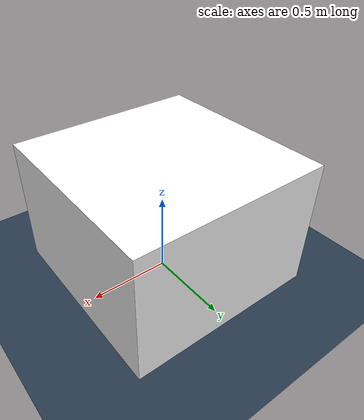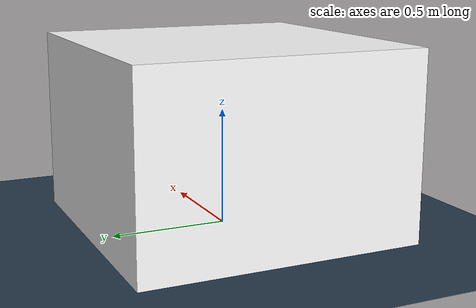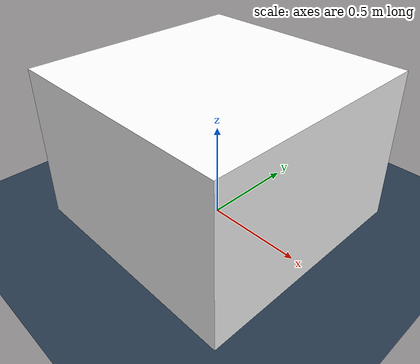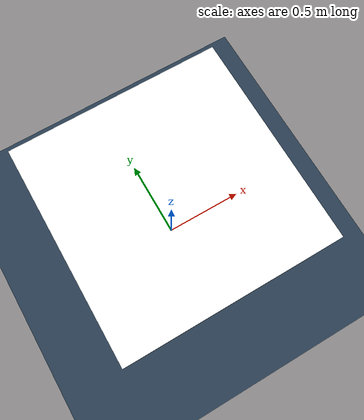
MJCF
<mujoco model="table_arena">
    <extension>
        <plugin plugin="mujoco.elasticity.shell"/>
    </extension>
  <asset>
    <texture name="plane" type="2d" builtin="checker" rgb1=".2 .3 .4" rgb2=".1 0.15 0.2"
      width="512" height="512" mark="cross" markrgb=".8 .8 .8" />
    <texture name="hammock" type="2d" builtin="checker" rgb1=".1 .5 .1" rgb2=".5 .1 .1"
      width="512" height="512" mark="edge" markrgb=".8 .8 .8" />
    <material name="plane" reflectance="0.3" texture="plane" texrepeat="1 1" texuniform="true" />
    <material name="hammock" texture="hammock" />
    <material name="white" rgba="1 1 1 1"/>
  </asset>
  <worldbody>
    <!-- Floor -->
    <geom condim="3" group="1" name="floor" material="plane" pos="0 0 0" size="3 3 .125" type="plane"/>

    <!-- Table body -->
    <body name="table" pos="0 0 0.4" >
      <geom pos="0 0 0" size="0.6 0.6 0.4" type="box" material="white" group="0" name="table_collision" friction="1 0.005 0.0001"/>
      <geom pos="0 0 0" size="0.6 0.6 0.4" type="box" material="white" conaffinity="0" contype="0" group="1" name="table_visual" />
      <site pos="0 0 0.4" name="table_top" size="0.001 0.001 0.001" rgba="0 0 0 0"/>
    </body>
    <light pos="1.0 1.0 1.5" dir="-0.2 -0.2 -1" specular="0.3 0.3 0.3" directional="true" castshadow="false"/>

    <!-- bird view -->
    <camera mode="fixed" name="birdview" pos="0.0 0 2.4" quat="0.7071 0 0 0.7071"/>

  </worldbody>
</mujoco>
